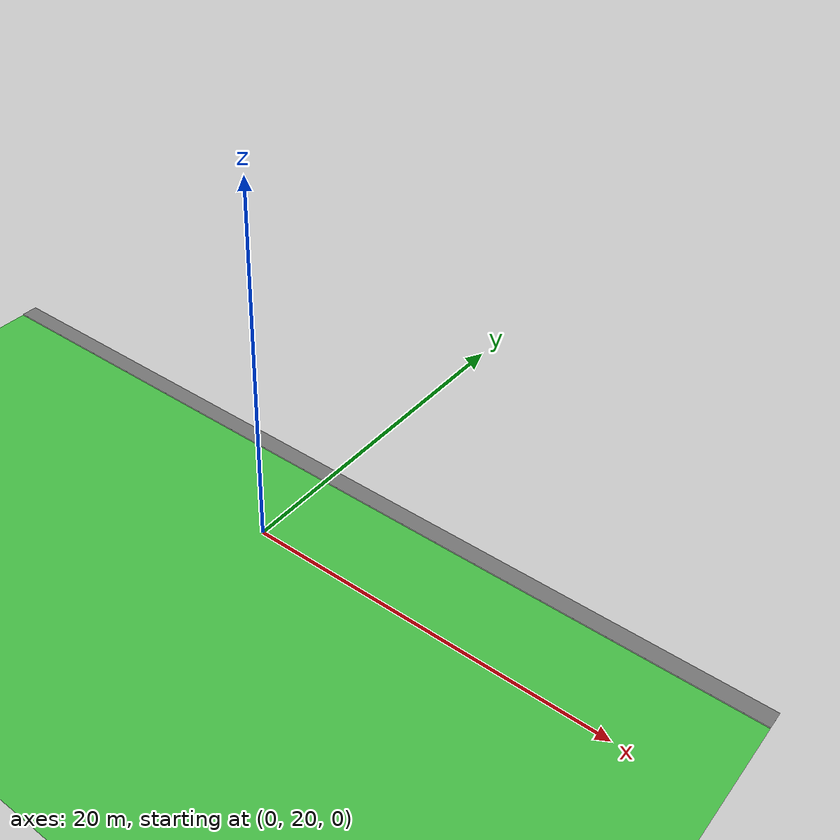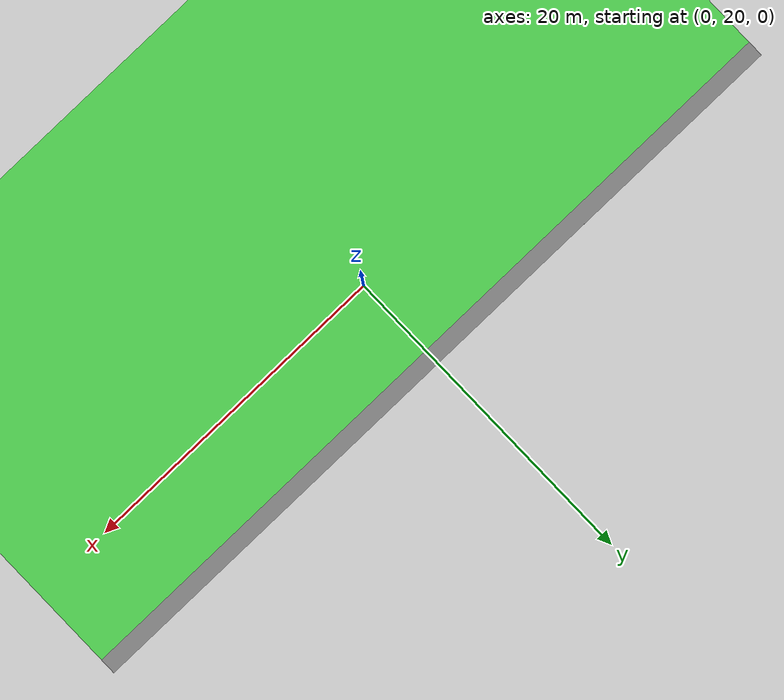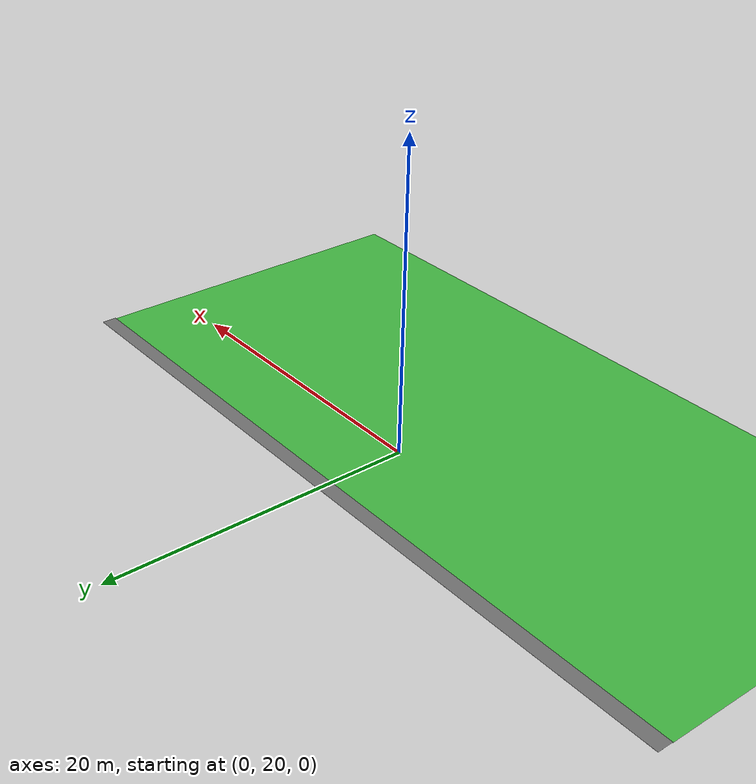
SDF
<?xml version="1.0" ?>
<sdf version="1.8">
  <world name="default">
    <plugin name="gz::sim::systems::Physics" filename="gz-sim-physics-system"/>
    <plugin name="gz::sim::systems::UserCommands" filename="gz-sim-user-commands-system"/>
    <plugin name="gz::sim::systems::SceneBroadcaster" filename="gz-sim-scene-broadcaster-system"/>

    <light type="directional" name="sun">
      <cast_shadows>true</cast_shadows>
      <pose>0 0 10 0 0 0</pose>
    </light>

    <model name="grass_plane">
      <static>true</static>
      <link name="link">
        <visual name="visual">
          <geometry><plane><normal>0 0 1</normal><size>50 50</size></plane></geometry>
          <material>
            <!-- Replaced the broken texture with a simple green color -->
            <diffuse>0.3 0.8 0.3 1.0</diffuse>
          </material>
        </visual>
        <collision name="collision">
            <geometry><plane><normal>0 0 1</normal><size>50 50</size></plane></geometry>
        </collision>
      </link>
    </model>

    <model name="pavement_plane">
      <static>true</static>
      <pose>0 25.5 0 0 0 0</pose>
      <link name="link">
        <visual name="visual">
          <geometry><plane><normal>0 0 1</normal><size>50 1</size></plane></geometry>
          <material>
            <!-- Using a simple grey color for consistency -->
            <diffuse>0.5 0.5 0.5 1.0</diffuse>
          </material>
        </visual>
        <collision name="collision">
            <geometry><plane><normal>0 0 1</normal><size>50 1</size></plane></geometry>
        </collision>
      </link>
    </model>

  </world>
</sdf>
